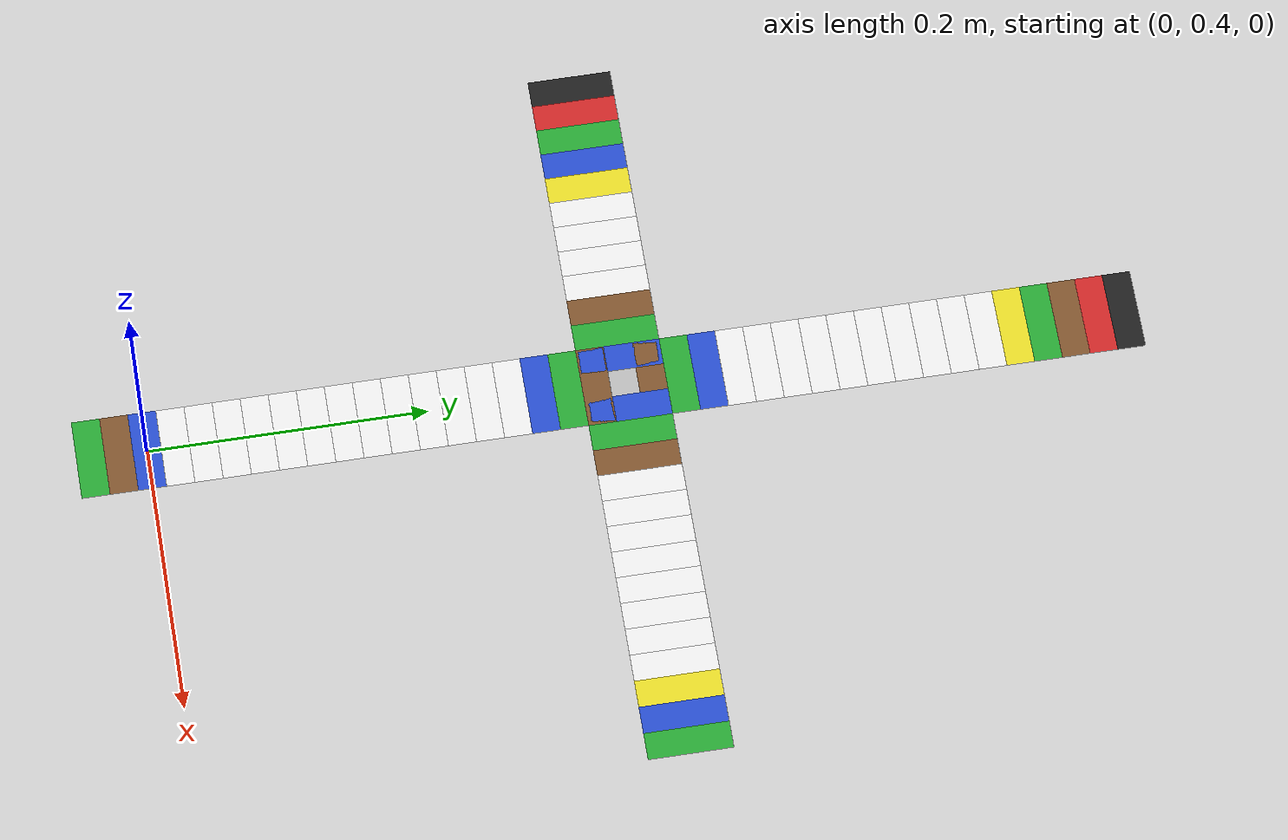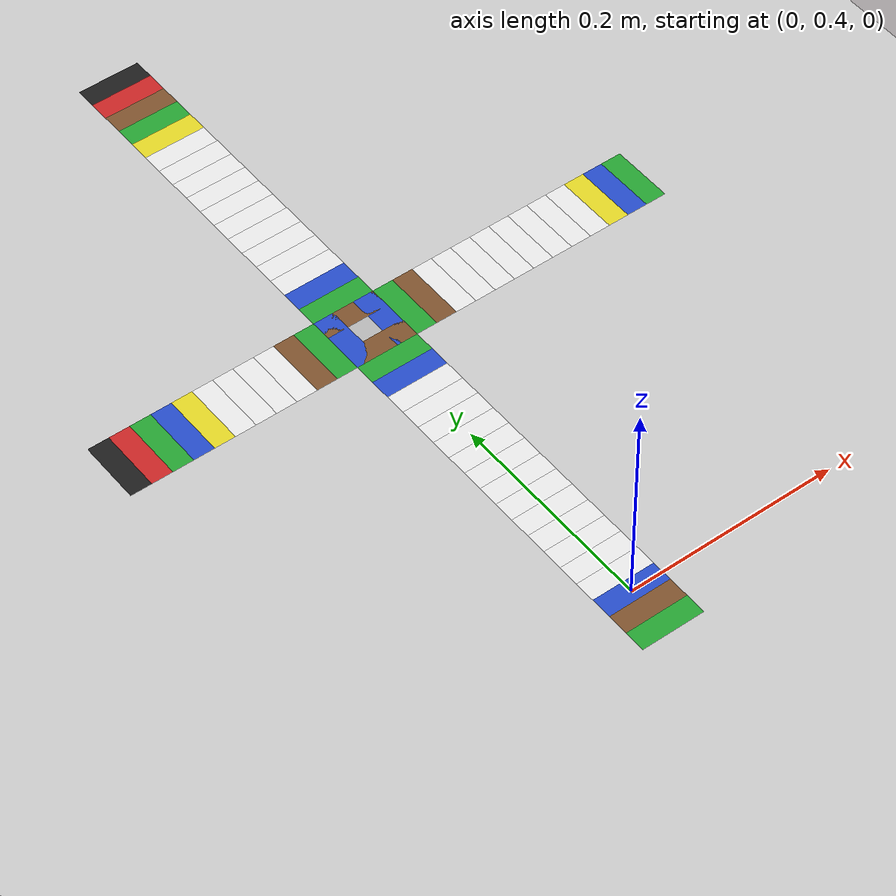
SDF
<sdf version="1.6">
 <world name="maskor_ev3_challenge">
  <model name="tileAC21">
   <pose>0 0.36 0.001 0 -0 0</pose>
   <static>1</static>
   <link name="link">
    <pose>0 0 0.001 0 -0 0</pose>
    <visual name="visual">
     <geometry><mesh><uri>model://maskor_ev3_tile/meshes/ev3_tile.dae</uri><scale>1 1 1</scale></mesh></geometry>
     <material>
      <script>
       <uri>model://maskor_ev3_tile/materials/scripts</uri>
       <uri>model://maskor_ev3_tile/materials/textures</uri>
       <name>green</name>
      </script>
     </material>
    </visual>
   </link>
  </model>
  <model name="tileAC22">
   <pose>0 0.38 0.001 0 -0 0</pose>
   <static>1</static>
   <link name="link">
    <pose>0 0 0.001 0 -0 0</pose>
    <visual name="visual">
     <geometry><mesh><uri>model://maskor_ev3_tile/meshes/ev3_tile.dae</uri><scale>1 1 1</scale></mesh></geometry>
     <material>
      <script>
       <uri>model://maskor_ev3_tile/materials/scripts</uri>
       <uri>model://maskor_ev3_tile/materials/textures</uri>
       <name>brown</name>
      </script>
     </material>
    </visual>
   </link>
  </model>
  <model name="tileAC23">
   <pose>0 0.4 0.001 0 -0 0</pose>
   <static>1</static>
   <link name="link">
    <pose>0 0 0.001 0 -0 0</pose>
    <visual name="visual">
     <geometry><mesh><uri>model://maskor_ev3_tile/meshes/ev3_tile.dae</uri><scale>1 1 1</scale></mesh></geometry>
     <material>
      <script>
       <uri>model://maskor_ev3_tile/materials/scripts</uri>
       <uri>model://maskor_ev3_tile/materials/textures</uri>
       <name>blue</name>
      </script>
     </material>
    </visual>
   </link>
  </model>
  <model name="tileAC24">
   <pose>0 0.42 0.001 0 -0 0</pose>
   <static>1</static>
   <link name="link">
    <pose>0 0 0.001 0 -0 0</pose>
    <visual name="visual">
     <geometry><mesh><uri>model://maskor_ev3_tile/meshes/ev3_tile.dae</uri><scale>1 1 1</scale></mesh></geometry>
     <material>
      <script>
       <uri>model://maskor_ev3_tile/materials/scripts</uri>
       <uri>model://maskor_ev3_tile/materials/textures</uri>
       <name>white</name>
      </script>
     </material>
    </visual>
   </link>
  </model>
  <model name="tileAC25">
   <pose>0 0.44 0.001 0 -0 0</pose>
   <static>1</static>
   <link name="link">
    <pose>0 0 0.001 0 -0 0</pose>
    <visual name="visual">
     <geometry><mesh><uri>model://maskor_ev3_tile/meshes/ev3_tile.dae</uri><scale>1 1 1</scale></mesh></geometry>
     <material>
      <script>
       <uri>model://maskor_ev3_tile/materials/scripts</uri>
       <uri>model://maskor_ev3_tile/materials/textures</uri>
       <name>white</name>
      </script>
     </material>
    </visual>
   </link>
  </model>
  <model name="tileAC26">
   <pose>0 0.46 0.001 0 -0 0</pose>
   <static>1</static>
   <link name="link">
    <pose>0 0 0.001 0 -0 0</pose>
    <visual name="visual">
     <geometry><mesh><uri>model://maskor_ev3_tile/meshes/ev3_tile.dae</uri><scale>1 1 1</scale></mesh></geometry>
     <material>
      <script>
       <uri>model://maskor_ev3_tile/materials/scripts</uri>
       <uri>model://maskor_ev3_tile/materials/textures</uri>
       <name>white</name>
      </script>
     </material>
    </visual>
   </link>
  </model>
  <model name="tileAC27">
   <pose>0 0.48 0.001 0 -0 0</pose>
   <static>1</static>
   <link name="link">
    <pose>0 0 0.001 0 -0 0</pose>
    <visual name="visual">
     <geometry><mesh><uri>model://maskor_ev3_tile/meshes/ev3_tile.dae</uri><scale>1 1 1</scale></mesh></geometry>
     <material>
      <script>
       <uri>model://maskor_ev3_tile/materials/scripts</uri>
       <uri>model://maskor_ev3_tile/materials/textures</uri>
       <name>white</name>
      </script>
     </material>
    </visual>
   </link>
  </model>
  <model name="tileAC34">
   <pose>0 0.62 0.001 0 -0 0</pose>
   <static>1</static>
   <link name="link">
    <pose>0 0 0.001 0 -0 0</pose>
    <visual name="visual">
     <geometry><mesh><uri>model://maskor_ev3_tile/meshes/ev3_tile.dae</uri><scale>1 1 1</scale></mesh></geometry>
     <material>
      <script>
       <uri>model://maskor_ev3_tile/materials/scripts</uri>
       <uri>model://maskor_ev3_tile/materials/textures</uri>
       <name>white</name>
      </script>
     </material>
    </visual>
   </link>
  </model>
  <model name="tileAC28">
   <pose>0 0.5 0.001 0 -0 0</pose>
   <static>1</static>
   <link name="link">
    <pose>0 0 0.001 0 -0 0</pose>
    <visual name="visual">
     <geometry><mesh><uri>model://maskor_ev3_tile/meshes/ev3_tile.dae</uri><scale>1 1 1</scale></mesh></geometry>
     <material>
      <script>
       <uri>model://maskor_ev3_tile/materials/scripts</uri>
       <uri>model://maskor_ev3_tile/materials/textures</uri>
       <name>white</name>
      </script>
     </material>
    </visual>
   </link>
  </model>
  <model name="tileAC29">
   <pose>0 0.52 0.001 0 -0 0</pose>
   <static>1</static>
   <link name="link">
    <pose>0 0 0.001 0 -0 0</pose>
    <visual name="visual">
     <geometry><mesh><uri>model://maskor_ev3_tile/meshes/ev3_tile.dae</uri><scale>1 1 1</scale></mesh></geometry>
     <material>
      <script>
       <uri>model://maskor_ev3_tile/materials/scripts</uri>
       <uri>model://maskor_ev3_tile/materials/textures</uri>
       <name>white</name>
      </script>
     </material>
    </visual>
   </link>
  </model>
  <model name="tileAC30">
   <pose>0 0.54 0.001 0 -0 0</pose>
   <static>1</static>
   <link name="link">
    <pose>0 0 0.001 0 -0 0</pose>
    <visual name="visual">
     <geometry><mesh><uri>model://maskor_ev3_tile/meshes/ev3_tile.dae</uri><scale>1 1 1</scale></mesh></geometry>
     <material>
      <script>
       <uri>model://maskor_ev3_tile/materials/scripts</uri>
       <uri>model://maskor_ev3_tile/materials/textures</uri>
       <name>white</name>
      </script>
     </material>
    </visual>
   </link>
  </model>
  <model name="tileAC31">
   <pose>0 0.56 0.001 0 -0 0</pose>
   <static>1</static>
   <link name="link">
    <pose>0 0 0.001 0 -0 0</pose>
    <visual name="visual">
     <geometry><mesh><uri>model://maskor_ev3_tile/meshes/ev3_tile.dae</uri><scale>1 1 1</scale></mesh></geometry>
     <material>
      <script>
       <uri>model://maskor_ev3_tile/materials/scripts</uri>
       <uri>model://maskor_ev3_tile/materials/textures</uri>
       <name>white</name>
      </script>
     </material>
    </visual>
   </link>
  </model>
  <model name="tileAC32">
   <pose>0 0.58 0.001 0 -0 0</pose>
   <static>1</static>
   <link name="link">
    <pose>0 0 0.001 0 -0 0</pose>
    <visual name="visual">
     <geometry><mesh><uri>model://maskor_ev3_tile/meshes/ev3_tile.dae</uri><scale>1 1 1</scale></mesh></geometry>
     <material>
      <script>
       <uri>model://maskor_ev3_tile/materials/scripts</uri>
       <uri>model://maskor_ev3_tile/materials/textures</uri>
       <name>white</name>
      </script>
     </material>
    </visual>
   </link>
  </model>
  <model name="tileAC33">
   <pose>0 0.6 0.001 0 -0 0</pose>
   <static>1</static>
   <link name="link">
    <pose>0 0 0.001 0 -0 0</pose>
    <visual name="visual">
     <geometry><mesh><uri>model://maskor_ev3_tile/meshes/ev3_tile.dae</uri><scale>1 1 1</scale></mesh></geometry>
     <material>
      <script>
       <uri>model://maskor_ev3_tile/materials/scripts</uri>
       <uri>model://maskor_ev3_tile/materials/textures</uri>
       <name>white</name>
      </script>
     </material>
    </visual>
   </link>
  </model>
  <model name="tileAC35">
   <pose>0 0.64 0.001 0 -0 0</pose>
   <static>1</static>
   <link name="link">
    <pose>0 0 0.001 0 -0 0</pose>
    <visual name="visual">
     <geometry><mesh><uri>model://maskor_ev3_tile/meshes/ev3_tile.dae</uri><scale>1 1 1</scale></mesh></geometry>
     <material>
      <script>
       <uri>model://maskor_ev3_tile/materials/scripts</uri>
       <uri>model://maskor_ev3_tile/materials/textures</uri>
       <name>white</name>
      </script>
     </material>
    </visual>
   </link>
  </model>
  <model name="tileAC36">
   <pose>0 0.66 0.001 0 -0 0</pose>
   <static>1</static>
   <link name="link">
    <pose>0 0 0.001 0 -0 0</pose>
    <visual name="visual">
     <geometry><mesh><uri>model://maskor_ev3_tile/meshes/ev3_tile.dae</uri><scale>1 1 1</scale></mesh></geometry>
     <material>
      <script>
       <uri>model://maskor_ev3_tile/materials/scripts</uri>
       <uri>model://maskor_ev3_tile/materials/textures</uri>
       <name>white</name>
      </script>
     </material>
    </visual>
   </link>
  </model>
  <model name="tileAC37">
   <pose>0 0.68 0.001 0 -0 0</pose>
   <static>1</static>
   <link name="link">
    <pose>0 0 0.001 0 -0 0</pose>
    <visual name="visual">
     <geometry><mesh><uri>model://maskor_ev3_tile/meshes/ev3_tile.dae</uri><scale>1 1 1</scale></mesh></geometry>
     <material>
      <script>
       <uri>model://maskor_ev3_tile/materials/scripts</uri>
       <uri>model://maskor_ev3_tile/materials/textures</uri>
       <name>blue</name>
      </script>
     </material>
    </visual>
   </link>
  </model>
  <model name="tileAC38">
   <pose>0 0.7 0.001 0 -0 0</pose>
   <static>1</static>
   <link name="link">
    <pose>0 0 0.001 0 -0 0</pose>
    <visual name="visual">
     <geometry><mesh><uri>model://maskor_ev3_tile/meshes/ev3_tile.dae</uri><scale>1 1 1</scale></mesh></geometry>
     <material>
      <script>
       <uri>model://maskor_ev3_tile/materials/scripts</uri>
       <uri>model://maskor_ev3_tile/materials/textures</uri>
       <name>green</name>
      </script>
     </material>
    </visual>
   </link>
  </model>
  <model name="tileAC39">
   <pose>0 0.72 0.001 0 -0 0</pose>
   <static>1</static>
   <link name="link">
    <pose>0 0 0.001 0 -0 0</pose>
    <visual name="visual">
     <geometry><mesh><uri>model://maskor_ev3_tile/meshes/ev3_tile.dae</uri><scale>1 1 1</scale></mesh></geometry>
     <material>
      <script>
       <uri>model://maskor_ev3_tile/materials/scripts</uri>
       <uri>model://maskor_ev3_tile/materials/textures</uri>
       <name>brown</name>
      </script>
     </material>
    </visual>
   </link>
  </model>
  <model name="tileAC40">
   <pose>0 0.74 0.002 0 -0 0</pose>
   <static>1</static>
   <link name="link">
    <visual name="visual">
     <geometry>
      <mesh><uri>model://maskor_ev3_tile_center/meshes/ev3_tile_center.dae</uri><scale>1 1 1</scale></mesh>
     </geometry>
     <material>
      <script>
       <uri>model://maskor_ev3_tile_center/materials/scripts</uri>
       <uri>model://maskor_ev3_tile_center/materials/textures</uri>
       <name>center</name>
      </script>
     </material>
    </visual>
   </link>
  </model>
  <model name="tileAC41">
   <pose>0 0.76 0.001 0 -0 0</pose>
   <static>1</static>
   <link name="link">
    <pose>0 0 0.001 0 -0 0</pose>
    <visual name="visual">
     <geometry><mesh><uri>model://maskor_ev3_tile/meshes/ev3_tile.dae</uri><scale>1 1 1</scale></mesh></geometry>
     <material>
      <script>
       <uri>model://maskor_ev3_tile/materials/scripts</uri>
       <uri>model://maskor_ev3_tile/materials/textures</uri>
       <name>brown</name>
      </script>
     </material>
    </visual>
   </link>
  </model>
  <model name="tileAC42">
   <pose>0 0.78 0.001 0 -0 0</pose>
   <static>1</static>
   <link name="link">
    <pose>0 0 0.001 0 -0 0</pose>
    <visual name="visual">
     <geometry><mesh><uri>model://maskor_ev3_tile/meshes/ev3_tile.dae</uri><scale>1 1 1</scale></mesh></geometry>
     <material>
      <script>
       <uri>model://maskor_ev3_tile/materials/scripts</uri>
       <uri>model://maskor_ev3_tile/materials/textures</uri>
       <name>green</name>
      </script>
     </material>
    </visual>
   </link>
  </model>
  <model name="tileAC43">
   <pose>0 0.8 0.001 0 -0 0</pose>
   <static>1</static>
   <link name="link">
    <pose>0 0 0.001 0 -0 0</pose>
    <visual name="visual">
     <geometry><mesh><uri>model://maskor_ev3_tile/meshes/ev3_tile.dae</uri><scale>1 1 1</scale></mesh></geometry>
     <material>
      <script>
       <uri>model://maskor_ev3_tile/materials/scripts</uri>
       <uri>model://maskor_ev3_tile/materials/textures</uri>
       <name>blue</name>
      </script>
     </material>
    </visual>
   </link>
  </model>
  <model name="tileAC44">
   <pose>0 0.82 0.001 0 -0 0</pose>
   <static>1</static>
   <link name="link">
    <pose>0 0 0.001 0 -0 0</pose>
    <visual name="visual">
     <geometry><mesh><uri>model://maskor_ev3_tile/meshes/ev3_tile.dae</uri><scale>1 1 1</scale></mesh></geometry>
     <material>
      <script>
       <uri>model://maskor_ev3_tile/materials/scripts</uri>
       <uri>model://maskor_ev3_tile/materials/textures</uri>
       <name>white</name>
      </script>
     </material>
    </visual>
   </link>
  </model>
  <model name="tileAC45">
   <pose>0 0.84 0.001 0 -0 0</pose>
   <static>1</static>
   <link name="link">
    <pose>0 0 0.001 0 -0 0</pose>
    <visual name="visual">
     <geometry><mesh><uri>model://maskor_ev3_tile/meshes/ev3_tile.dae</uri><scale>1 1 1</scale></mesh></geometry>
     <material>
      <script>
       <uri>model://maskor_ev3_tile/materials/scripts</uri>
       <uri>model://maskor_ev3_tile/materials/textures</uri>
       <name>white</name>
      </script>
     </material>
    </visual>
   </link>
  </model>
  <model name="tileAC46">
   <pose>0 0.86 0.001 0 -0 0</pose>
   <static>1</static>
   <link name="link">
    <pose>0 0 0.001 0 -0 0</pose>
    <visual name="visual">
     <geometry><mesh><uri>model://maskor_ev3_tile/meshes/ev3_tile.dae</uri><scale>1 1 1</scale></mesh></geometry>
     <material>
      <script>
       <uri>model://maskor_ev3_tile/materials/scripts</uri>
       <uri>model://maskor_ev3_tile/materials/textures</uri>
       <name>white</name>
      </script>
     </material>
    </visual>
   </link>
  </model>
  <model name="tileAC47">
   <pose>0 0.88 0.001 0 -0 0</pose>
   <static>1</static>
   <link name="link">
    <pose>0 0 0.001 0 -0 0</pose>
    <visual name="visual">
     <geometry><mesh><uri>model://maskor_ev3_tile/meshes/ev3_tile.dae</uri><scale>1 1 1</scale></mesh></geometry>
     <material>
      <script>
       <uri>model://maskor_ev3_tile/materials/scripts</uri>
       <uri>model://maskor_ev3_tile/materials/textures</uri>
       <name>white</name>
      </script>
     </material>
    </visual>
   </link>
  </model>
  <model name="tileAC48">
   <pose>0 0.9 0.001 0 -0 0</pose>
   <static>1</static>
   <link name="link">
    <pose>0 0 0.001 0 -0 0</pose>
    <visual name="visual">
     <geometry><mesh><uri>model://maskor_ev3_tile/meshes/ev3_tile.dae</uri><scale>1 1 1</scale></mesh></geometry>
     <material>
      <script>
       <uri>model://maskor_ev3_tile/materials/scripts</uri>
       <uri>model://maskor_ev3_tile/materials/textures</uri>
       <name>white</name>
      </script>
     </material>
    </visual>
   </link>
  </model>
  <model name="tileAC49">
   <pose>0 0.92 0.001 0 -0 0</pose>
   <static>1</static>
   <link name="link">
    <pose>0 0 0.001 0 -0 0</pose>
    <visual name="visual">
     <geometry><mesh><uri>model://maskor_ev3_tile/meshes/ev3_tile.dae</uri><scale>1 1 1</scale></mesh></geometry>
     <material>
      <script>
       <uri>model://maskor_ev3_tile/materials/scripts</uri>
       <uri>model://maskor_ev3_tile/materials/textures</uri>
       <name>white</name>
      </script>
     </material>
    </visual>
   </link>
  </model>
  <model name="tileAC50">
   <pose>0 0.94 0.001 0 -0 0</pose>
   <static>1</static>
   <link name="link">
    <pose>0 0 0.001 0 -0 0</pose>
    <visual name="visual">
     <geometry><mesh><uri>model://maskor_ev3_tile/meshes/ev3_tile.dae</uri><scale>1 1 1</scale></mesh></geometry>
     <material>
      <script>
       <uri>model://maskor_ev3_tile/materials/scripts</uri>
       <uri>model://maskor_ev3_tile/materials/textures</uri>
       <name>white</name>
      </script>
     </material>
    </visual>
   </link>
  </model>
  <model name="tileAC51">
   <pose>0 0.96 0.001 0 -0 0</pose>
   <static>1</static>
   <link name="link">
    <pose>0 0 0.001 0 -0 0</pose>
    <visual name="visual">
     <geometry><mesh><uri>model://maskor_ev3_tile/meshes/ev3_tile.dae</uri><scale>1 1 1</scale></mesh></geometry>
     <material>
      <script>
       <uri>model://maskor_ev3_tile/materials/scripts</uri>
       <uri>model://maskor_ev3_tile/materials/textures</uri>
       <name>white</name>
      </script>
     </material>
    </visual>
   </link>
  </model>
  <model name="tileAC52">
   <pose>0 0.98 0.001 0 -0 0</pose>
   <static>1</static>
   <link name="link">
    <pose>0 0 0.001 0 -0 0</pose>
    <visual name="visual">
     <geometry><mesh><uri>model://maskor_ev3_tile/meshes/ev3_tile.dae</uri><scale>1 1 1</scale></mesh></geometry>
     <material>
      <script>
       <uri>model://maskor_ev3_tile/materials/scripts</uri>
       <uri>model://maskor_ev3_tile/materials/textures</uri>
       <name>white</name>
      </script>
     </material>
    </visual>
   </link>
  </model>
  <model name="tileAC53">
   <pose>0 1 0.001 0 -0 0</pose>
   <static>1</static>
   <link name="link">
    <pose>0 0 0.001 0 -0 0</pose>
    <visual name="visual">
     <geometry><mesh><uri>model://maskor_ev3_tile/meshes/ev3_tile.dae</uri><scale>1 1 1</scale></mesh></geometry>
     <material>
      <script>
       <uri>model://maskor_ev3_tile/materials/scripts</uri>
       <uri>model://maskor_ev3_tile/materials/textures</uri>
       <name>white</name>
      </script>
     </material>
    </visual>
   </link>
  </model>
  <model name="tileAC54">
   <pose>0 1.02 0.001 0 -0 0</pose>
   <static>1</static>
   <link name="link">
    <pose>0 0 0.001 0 -0 0</pose>
    <visual name="visual">
     <geometry><mesh><uri>model://maskor_ev3_tile/meshes/ev3_tile.dae</uri><scale>1 1 1</scale></mesh></geometry>
     <material>
      <script>
       <uri>model://maskor_ev3_tile/materials/scripts</uri>
       <uri>model://maskor_ev3_tile/materials/textures</uri>
       <name>yellow</name>
      </script>
     </material>
    </visual>
   </link>
  </model>
  <model name="tileAC55">
   <pose>0 1.04 0.001 0 -0 0</pose>
   <static>1</static>
   <link name="link">
    <pose>0 0 0.001 0 -0 0</pose>
    <visual name="visual">
     <geometry><mesh><uri>model://maskor_ev3_tile/meshes/ev3_tile.dae</uri><scale>1 1 1</scale></mesh></geometry>
     <material>
      <script>
       <uri>model://maskor_ev3_tile/materials/scripts</uri>
       <uri>model://maskor_ev3_tile/materials/textures</uri>
       <name>green</name>
      </script>
     </material>
    </visual>
   </link>
  </model>
  <model name="tileAC56">
   <pose>0 1.06 0.001 0 -0 0</pose>
   <static>1</static>
   <link name="link">
    <pose>0 0 0.001 0 -0 0</pose>
    <visual name="visual">
     <geometry><mesh><uri>model://maskor_ev3_tile/meshes/ev3_tile.dae</uri><scale>1 1 1</scale></mesh></geometry>
     <material>
      <script>
       <uri>model://maskor_ev3_tile/materials/scripts</uri>
       <uri>model://maskor_ev3_tile/materials/textures</uri>
       <name>brown</name>
      </script>
     </material>
    </visual>
   </link>
  </model>
  <model name="tileAC57">
   <pose>0 1.08 0.001 0 -0 0</pose>
   <static>1</static>
   <link name="link">
    <pose>0 0 0.001 0 -0 0</pose>
    <visual name="visual">
     <geometry><mesh><uri>model://maskor_ev3_tile/meshes/ev3_tile.dae</uri><scale>1 1 1</scale></mesh></geometry>
     <material>
      <script>
       <uri>model://maskor_ev3_tile/materials/scripts</uri>
       <uri>model://maskor_ev3_tile/materials/textures</uri>
       <name>red</name>
      </script>
     </material>
    </visual>
   </link>
  </model>
  <model name="tileAC58">
   <pose>0 1.1 0.001 0 -0 0</pose>
   <static>1</static>
   <link name="link">
    <pose>0 0 0.001 0 -0 0</pose>
    <visual name="visual">
     <geometry><mesh><uri>model://maskor_ev3_tile/meshes/ev3_tile.dae</uri><scale>1 1 1</scale></mesh></geometry>
     <material>
      <script>
       <uri>model://maskor_ev3_tile/materials/scripts</uri>
       <uri>model://maskor_ev3_tile/materials/textures</uri>
       <name>black</name>
      </script>
     </material>
    </visual>
   </link>
  </model>
  <model name="tileGH3">
   <pose>-0.24 0.74 0.001 0 -0 1.5708</pose>
   <static>1</static>
   <link name="link">
    <pose>0 0 0.001 0 -0 0</pose>
    <visual name="visual">
     <geometry><mesh><uri>model://maskor_ev3_tile/meshes/ev3_tile.dae</uri><scale>1 1 1</scale></mesh></geometry>
     <material>
      <script>
       <uri>model://maskor_ev3_tile/materials/scripts</uri>
       <uri>model://maskor_ev3_tile/materials/textures</uri>
       <name>black</name>
      </script>
     </material>
    </visual>
   </link>
  </model>
  <model name="tileGH4">
   <pose>-0.22 0.74 0.001 0 -0 1.5708</pose>
   <static>1</static>
   <link name="link">
    <pose>0 0 0.001 0 -0 0</pose>
    <visual name="visual">
     <geometry><mesh><uri>model://maskor_ev3_tile/meshes/ev3_tile.dae</uri><scale>1 1 1</scale></mesh></geometry>
     <material>
      <script>
       <uri>model://maskor_ev3_tile/materials/scripts</uri>
       <uri>model://maskor_ev3_tile/materials/textures</uri>
       <name>red</name>
      </script>
     </material>
    </visual>
   </link>
  </model>
  <model name="tileGH5">
   <pose>-0.2 0.74 0.001 0 -0 1.5708</pose>
   <static>1</static>
   <link name="link">
    <pose>0 0 0.001 0 -0 0</pose>
    <visual name="visual">
     <geometry><mesh><uri>model://maskor_ev3_tile/meshes/ev3_tile.dae</uri><scale>1 1 1</scale></mesh></geometry>
     <material>
      <script>
       <uri>model://maskor_ev3_tile/materials/scripts</uri>
       <uri>model://maskor_ev3_tile/materials/textures</uri>
       <name>green</name>
      </script>
     </material>
    </visual>
   </link>
  </model>
  <model name="tileGH6">
   <pose>-0.18 0.74 0.001 0 -0 1.5708</pose>
   <static>1</static>
   <link name="link">
    <pose>0 0 0.001 0 -0 0</pose>
    <visual name="visual">
     <geometry><mesh><uri>model://maskor_ev3_tile/meshes/ev3_tile.dae</uri><scale>1 1 1</scale></mesh></geometry>
     <material>
      <script>
       <uri>model://maskor_ev3_tile/materials/scripts</uri>
       <uri>model://maskor_ev3_tile/materials/textures</uri>
       <name>blue</name>
      </script>
     </material>
    </visual>
   </link>
  </model>
  <model name="tileGH7">
   <pose>-0.16 0.74 0.001 0 -0 1.5708</pose>
   <static>1</static>
   <link name="link">
    <pose>0 0 0.001 0 -0 0</pose>
    <visual name="visual">
     <geometry><mesh><uri>model://maskor_ev3_tile/meshes/ev3_tile.dae</uri><scale>1 1 1</scale></mesh></geometry>
     <material>
      <script>
       <uri>model://maskor_ev3_tile/materials/scripts</uri>
       <uri>model://maskor_ev3_tile/materials/textures</uri>
       <name>yellow</name>
      </script>
     </material>
    </visual>
   </link>
  </model>
  <model name="tileGH8">
   <pose>-0.14 0.74 0.001 0 -0 1.5708</pose>
   <static>1</static>
   <link name="link">
    <pose>0 0 0.001 0 -0 0</pose>
    <visual name="visual">
     <geometry><mesh><uri>model://maskor_ev3_tile/meshes/ev3_tile.dae</uri><scale>1 1 1</scale></mesh></geometry>
     <material>
      <script>
       <uri>model://maskor_ev3_tile/materials/scripts</uri>
       <uri>model://maskor_ev3_tile/materials/textures</uri>
       <name>white</name>
      </script>
     </material>
    </visual>
   </link>
  </model>
  <model name="tileGH9">
   <pose>-0.12 0.74 0.001 0 -0 1.5708</pose>
   <static>1</static>
   <link name="link">
    <pose>0 0 0.001 0 -0 0</pose>
    <visual name="visual">
     <geometry><mesh><uri>model://maskor_ev3_tile/meshes/ev3_tile.dae</uri><scale>1 1 1</scale></mesh></geometry>
     <material>
      <script>
       <uri>model://maskor_ev3_tile/materials/scripts</uri>
       <uri>model://maskor_ev3_tile/materials/textures</uri>
       <name>white</name>
      </script>
     </material>
    </visual>
   </link>
  </model>
  <model name="tileGH10">
   <pose>-0.1 0.74 0.001 0 -0 1.5708</pose>
   <static>1</static>
   <link name="link">
    <pose>0 0 0.001 0 -0 0</pose>
    <visual name="visual">
     <geometry><mesh><uri>model://maskor_ev3_tile/meshes/ev3_tile.dae</uri><scale>1 1 1</scale></mesh></geometry>
     <material>
      <script>
       <uri>model://maskor_ev3_tile/materials/scripts</uri>
       <uri>model://maskor_ev3_tile/materials/textures</uri>
       <name>white</name>
      </script>
     </material>
    </visual>
   </link>
  </model>
  <model name="tileGH11">
   <pose>-0.08 0.74 0.001 0 -0 1.5708</pose>
   <static>1</static>
   <link name="link">
    <pose>0 0 0.001 0 -0 0</pose>
    <visual name="visual">
     <geometry><mesh><uri>model://maskor_ev3_tile/meshes/ev3_tile.dae</uri><scale>1 1 1</scale></mesh></geometry>
     <material>
      <script>
       <uri>model://maskor_ev3_tile/materials/scripts</uri>
       <uri>model://maskor_ev3_tile/materials/textures</uri>
       <name>white</name>
      </script>
     </material>
    </visual>
   </link>
  </model>
  <model name="tileGH12">
   <pose>-0.06 0.74 0.001 0 -0 1.5708</pose>
   <static>1</static>
   <link name="link">
    <pose>0 0 0.001 0 -0 0</pose>
    <visual name="visual">
     <geometry><mesh><uri>model://maskor_ev3_tile/meshes/ev3_tile.dae</uri><scale>1 1 1</scale></mesh></geometry>
     <material>
      <script>
       <uri>model://maskor_ev3_tile/materials/scripts</uri>
       <uri>model://maskor_ev3_tile/materials/textures</uri>
       <name>brown</name>
      </script>
     </material>
    </visual>
   </link>
  </model>
  <model name="tileGH13">
   <pose>-0.04 0.74 0.001 0 -0 1.5708</pose>
   <static>1</static>
   <link name="link">
    <pose>0 0 0.001 0 -0 0</pose>
    <visual name="visual">
     <geometry><mesh><uri>model://maskor_ev3_tile/meshes/ev3_tile.dae</uri><scale>1 1 1</scale></mesh></geometry>
     <material>
      <script>
       <uri>model://maskor_ev3_tile/materials/scripts</uri>
       <uri>model://maskor_ev3_tile/materials/textures</uri>
       <name>green</name>
      </script>
     </material>
    </visual>
   </link>
  </model>
  <model name="tileGH14">
   <pose>-0.02 0.74 0.001 0 -0 1.5708</pose>
   <static>1</static>
   <link name="link">
    <pose>0 0 0.001 0 -0 0</pose>
    <visual name="visual">
     <geometry><mesh><uri>model://maskor_ev3_tile/meshes/ev3_tile.dae</uri><scale>1 1 1</scale></mesh></geometry>
     <material>
      <script>
       <uri>model://maskor_ev3_tile/materials/scripts</uri>
       <uri>model://maskor_ev3_tile/materials/textures</uri>
       <name>blue</name>
      </script>
     </material>
    </visual>
   </link>
  </model>
  <model name="tileGH16">
   <pose>0.02 0.74 0.001 0 -0 1.5708</pose>
   <static>1</static>
   <link name="link">
    <pose>0 0 0.001 0 -0 0</pose>
    <visual name="visual">
     <geometry><mesh><uri>model://maskor_ev3_tile/meshes/ev3_tile.dae</uri><scale>1 1 1</scale></mesh></geometry>
     <material>
      <script>
       <uri>model://maskor_ev3_tile/materials/scripts</uri>
       <uri>model://maskor_ev3_tile/materials/textures</uri>
       <name>blue</name>
      </script>
     </material>
    </visual>
   </link>
  </model>
  <model name="tileGH17">
   <pose>0.04 0.74 0.001 0 -0 1.5708</pose>
   <static>1</static>
   <link name="link">
    <pose>0 0 0.001 0 -0 0</pose>
    <visual name="visual">
     <geometry><mesh><uri>model://maskor_ev3_tile/meshes/ev3_tile.dae</uri><scale>1 1 1</scale></mesh></geometry>
     <material>
      <script>
       <uri>model://maskor_ev3_tile/materials/scripts</uri>
       <uri>model://maskor_ev3_tile/materials/textures</uri>
       <name>green</name>
      </script>
     </material>
    </visual>
   </link>
  </model>
  <model name="tileGH18">
   <pose>0.06 0.74 0.001 0 -0 1.5708</pose>
   <static>1</static>
   <link name="link">
    <pose>0 0 0.001 0 -0 0</pose>
    <visual name="visual">
     <geometry><mesh><uri>model://maskor_ev3_tile/meshes/ev3_tile.dae</uri><scale>1 1 1</scale></mesh></geometry>
     <material>
      <script>
       <uri>model://maskor_ev3_tile/materials/scripts</uri>
       <uri>model://maskor_ev3_tile/materials/textures</uri>
       <name>brown</name>
      </script>
     </material>
    </visual>
   </link>
  </model>
  <model name="tileGH19">
   <pose>0.08 0.74 0.001 0 -0 1.5708</pose>
   <static>1</static>
   <link name="link">
    <pose>0 0 0.001 0 -0 0</pose>
    <visual name="visual">
     <geometry><mesh><uri>model://maskor_ev3_tile/meshes/ev3_tile.dae</uri><scale>1 1 1</scale></mesh></geometry>
     <material>
      <script>
       <uri>model://maskor_ev3_tile/materials/scripts</uri>
       <uri>model://maskor_ev3_tile/materials/textures</uri>
       <name>white</name>
      </script>
     </material>
    </visual>
   </link>
  </model>
  <model name="tileGH20">
   <pose>0.1 0.74 0.001 0 -0 1.5708</pose>
   <static>1</static>
   <link name="link">
    <pose>0 0 0.001 0 -0 0</pose>
    <visual name="visual">
     <geometry><mesh><uri>model://maskor_ev3_tile/meshes/ev3_tile.dae</uri><scale>1 1 1</scale></mesh></geometry>
     <material>
      <script>
       <uri>model://maskor_ev3_tile/materials/scripts</uri>
       <uri>model://maskor_ev3_tile/materials/textures</uri>
       <name>white</name>
      </script>
     </material>
    </visual>
   </link>
  </model>
  <model name="tileGH21">
   <pose>0.12 0.74 0.001 0 -0 1.5708</pose>
   <static>1</static>
   <link name="link">
    <pose>0 0 0.001 0 -0 0</pose>
    <visual name="visual">
     <geometry><mesh><uri>model://maskor_ev3_tile/meshes/ev3_tile.dae</uri><scale>1 1 1</scale></mesh></geometry>
     <material>
      <script>
       <uri>model://maskor_ev3_tile/materials/scripts</uri>
       <uri>model://maskor_ev3_tile/materials/textures</uri>
       <name>white</name>
      </script>
     </material>
    </visual>
   </link>
  </model>
  <model name="tileGH22">
   <pose>0.14 0.74 0.001 0 -0 1.5708</pose>
   <static>1</static>
   <link name="link">
    <pose>0 0 0.001 0 -0 0</pose>
    <visual name="visual">
     <geometry><mesh><uri>model://maskor_ev3_tile/meshes/ev3_tile.dae</uri><scale>1 1 1</scale></mesh></geometry>
     <material>
      <script>
       <uri>model://maskor_ev3_tile/materials/scripts</uri>
       <uri>model://maskor_ev3_tile/materials/textures</uri>
       <name>white</name>
      </script>
     </material>
    </visual>
   </link>
  </model>
  <model name="tileGH23">
   <pose>0.16 0.74 0.001 0 -0 1.5708</pose>
   <static>1</static>
   <link name="link">
    <pose>0 0 0.001 0 -0 0</pose>
    <visual name="visual">
     <geometry><mesh><uri>model://maskor_ev3_tile/meshes/ev3_tile.dae</uri><scale>1 1 1</scale></mesh></geometry>
     <material>
      <script>
       <uri>model://maskor_ev3_tile/materials/scripts</uri>
       <uri>model://maskor_ev3_tile/materials/textures</uri>
       <name>white</name>
      </script>
     </material>
    </visual>
   </link>
  </model>
  <model name="tileGH24">
   <pose>0.18 0.74 0.001 0 -0 1.5708</pose>
   <static>1</static>
   <link name="link">
    <pose>0 0 0.001 0 -0 0</pose>
    <visual name="visual">
     <geometry><mesh><uri>model://maskor_ev3_tile/meshes/ev3_tile.dae</uri><scale>1 1 1</scale></mesh></geometry>
     <material>
      <script>
       <uri>model://maskor_ev3_tile/materials/scripts</uri>
       <uri>model://maskor_ev3_tile/materials/textures</uri>
       <name>white</name>
      </script>
     </material>
    </visual>
   </link>
  </model>
  <model name="tileGH25">
   <pose>0.2 0.74 0.001 0 -0 1.5708</pose>
   <static>1</static>
   <link name="link">
    <pose>0 0 0.001 0 -0 0</pose>
    <visual name="visual">
     <geometry><mesh><uri>model://maskor_ev3_tile/meshes/ev3_tile.dae</uri><scale>1 1 1</scale></mesh></geometry>
     <material>
      <script>
       <uri>model://maskor_ev3_tile/materials/scripts</uri>
       <uri>model://maskor_ev3_tile/materials/textures</uri>
       <name>white</name>
      </script>
     </material>
    </visual>
   </link>
  </model>
  <model name="tileGH26">
   <pose>0.22 0.74 0.001 0 -0 1.5708</pose>
   <static>1</static>
   <link name="link">
    <pose>0 0 0.001 0 -0 0</pose>
    <visual name="visual">
     <geometry><mesh><uri>model://maskor_ev3_tile/meshes/ev3_tile.dae</uri><scale>1 1 1</scale></mesh></geometry>
     <material>
      <script>
       <uri>model://maskor_ev3_tile/materials/scripts</uri>
       <uri>model://maskor_ev3_tile/materials/textures</uri>
       <name>white</name>
      </script>
     </material>
    </visual>
   </link>
  </model>
  <model name="tileGH28">
   <pose>0.26 0.74 0.001 0 -0 1.5708</pose>
   <static>1</static>
   <link name="link">
    <pose>0 0 0.001 0 -0 0</pose>
    <visual name="visual">
     <geometry><mesh><uri>model://maskor_ev3_tile/meshes/ev3_tile.dae</uri><scale>1 1 1</scale></mesh></geometry>
     <material>
      <script>
       <uri>model://maskor_ev3_tile/materials/scripts</uri>
       <uri>model://maskor_ev3_tile/materials/textures</uri>
       <name>blue</name>
      </script>
     </material>
    </visual>
   </link>
  </model>
  <model name="tileGH27">
   <pose>0.24 0.74 0.001 0 -0 1.5708</pose>
   <static>1</static>
   <link name="link">
    <pose>0 0 0.001 0 -0 0</pose>
    <visual name="visual">
     <geometry><mesh><uri>model://maskor_ev3_tile/meshes/ev3_tile.dae</uri><scale>1 1 1</scale></mesh></geometry>
     <material>
      <script>
       <uri>model://maskor_ev3_tile/materials/scripts</uri>
       <uri>model://maskor_ev3_tile/materials/textures</uri>
       <name>yellow</name>
      </script>
     </material>
    </visual>
   </link>
  </model>
  <model name="tileGH29">
   <pose>0.28 0.74 0.001 0 -0 1.5708</pose>
   <static>1</static>
   <link name="link">
    <pose>0 0 0.001 0 -0 0</pose>
    <visual name="visual">
     <geometry><mesh><uri>model://maskor_ev3_tile/meshes/ev3_tile.dae</uri><scale>1 1 1</scale></mesh></geometry>
     <material>
      <script>
       <uri>model://maskor_ev3_tile/materials/scripts</uri>
       <uri>model://maskor_ev3_tile/materials/textures</uri>
       <name>green</name>
      </script>
     </material>
    </visual>
   </link>
  </model>
  <model name="ground_plane">
   <static>1</static>
   <link name="link">
    <collision name="collision">
     <geometry><plane><normal>0 0 1</normal><size>100 100</size></plane></geometry>
     <surface><friction><ode><mu>100</mu><mu2>50</mu2></ode></friction></surface>
    </collision>
    <visual name="visual">
     <cast_shadows>0</cast_shadows>
     <geometry><plane><normal>0 0 1</normal><size>100 100</size></plane></geometry>
     <material>
      <script><uri>file://media/materials/scripts/gazebo.material</uri><name>Gazebo/Grey</name></script>
     </material>
    </visual>
   </link>
   <pose>0.114931 0.220781 0 0 -0 0</pose>
  </model>
 </world>
</sdf>
